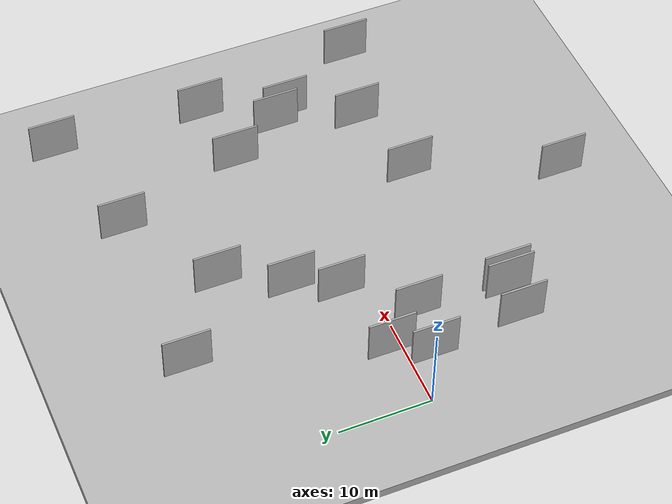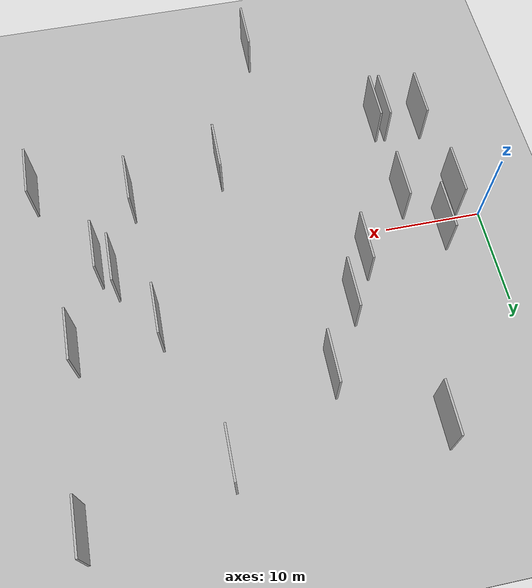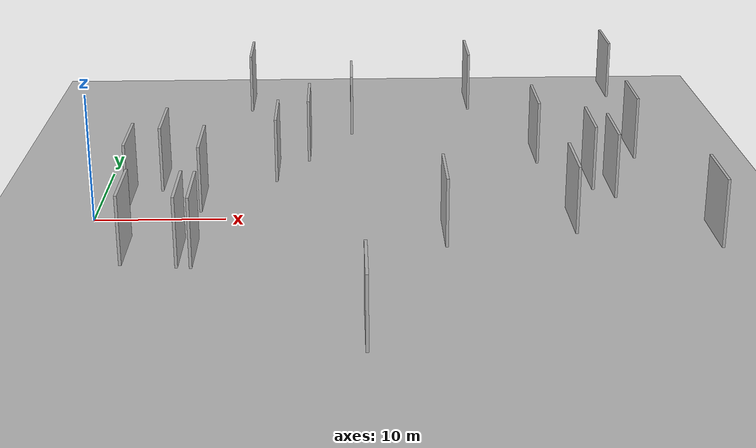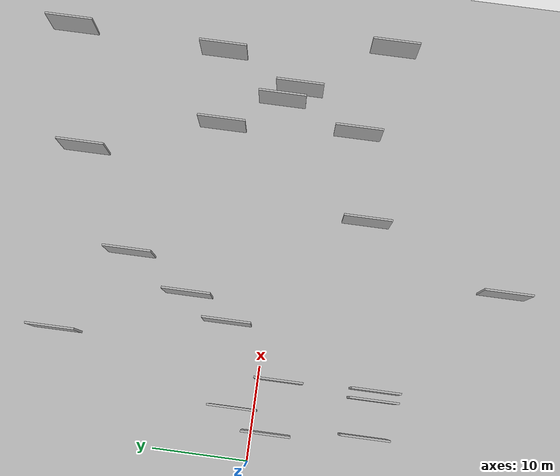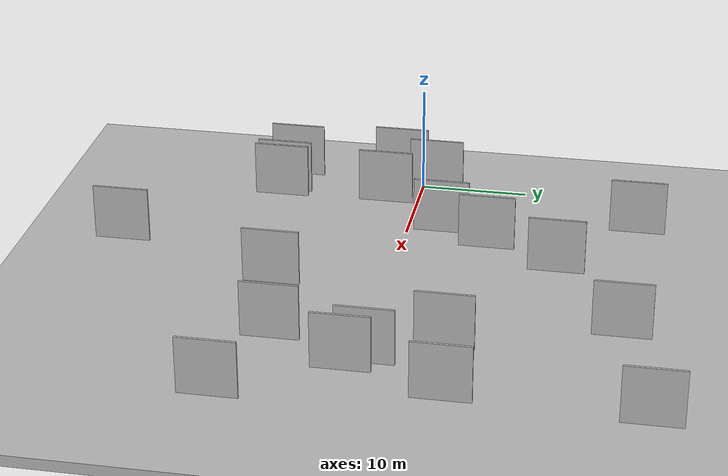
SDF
<?xml version="1.0" encoding="utf-8"?>

<sdf version="1.6">

   <world name="default">

      <gui fullscreen="0">

         <camera name="user_camera">

            <pose>-15 0 4.57585 0 0 0</pose>

            <view_controller>orbit</view_controller>

         </camera>

      </gui>

      <scene>

         <sky>

           <clouds>

             <speed>12</speed>

           </clouds>

         </sky>

         <ambient>0.4 0.4 0.4 1</ambient>

         <background>0.7 0.7 0.7 1</background>

         <shadows>1</shadows>

      </scene>

      <gravity>0 0 -9.8066</gravity>

      <magnetic_field>6e-06 2.3e-05 -4.2e-05</magnetic_field>

      <physics default="0" name="default_physics" type="ode">

         <ode>

            <solver>

               <type>quick</type>

               <iters>10</iters>

               <sor>1.0</sor>

               <use_dynamic_moi_rescaling>0</use_dynamic_moi_rescaling>

            </solver>

            <constraints>

               <cfm>0</cfm>

               <erp>0.2</erp>

               <contact_max_correcting_vel>100</contact_max_correcting_vel>

               <contact_surface_layer>0.001</contact_surface_layer>

            </constraints>

         </ode>

         <max_step_size>0.004</max_step_size>

         <real_time_factor>1</real_time_factor>

         <real_time_update_rate>250</real_time_update_rate>

      </physics>

      <light name="sun" type="directional">

         <cast_shadows>1</cast_shadows>

         <pose>0 0 10 0 0 0</pose>

         <diffuse>0.8 0.8 0.8 1</diffuse>

         <specular>0.2 0.2 0.2 1</specular>

         <attenuation>

            <range>1000</range>

            <constant>0.9</constant>

            <linear>0.01</linear>

            <quadratic>0.001</quadratic>

         </attenuation>

         <direction>-0.5 0.1 -0.9</direction>

      </light>

      <include>

         <name>ground_plane_1</name>

         <uri>model://HANNAS_ground_plane</uri>

         <pose>0 0 0  0 0 0</pose>

      </include>

      <include>

         <name>ground_plane_2</name>

         <uri>model://HANNAS_ground_plane</uri>

         <pose>100 0 0  0 0 0</pose>

      </include>

      <model name="HANNAS_wall_1">

         <static>1</static>

         <pose frame="">3.2488 -1.5777 2.5 0.000000 0.000000 1.570796</pose>

         <link name="link">

            <pose frame="">0 0 2.50 0 0 0</pose>

            <collision name="collision">

               <geometry>

                  <box>

                     <size>5.00 0.2 5.00</size>

                  </box>

               </geometry>

               <max_contacts>10</max_contacts>

               <surface>

                  <contact>

                     <ode/>

                  </contact>

                  <bounce/>

                  <friction>

                     <torsional>

                        <ode/>

                     </torsional>

                     <ode/>

                  </friction>

               </surface>

            </collision>

            <visual name="visual">

               <cast_shadows>0</cast_shadows>

               <geometry>

                  <box>

                     <size>5.00 0.2 5.00</size>

                  </box>

               </geometry>

               <material>

                  <script>

                     <uri>model://HANNAS_wall/materials/scripts</uri>

                     <uri>model://HANNAS_wall/materials/textures</uri>

                     <name>vrc/HANNAS_wall</name>

                  </script>

               </material>

            </visual>

            <self_collide>0</self_collide>

            <enable_wind>0</enable_wind>

            <kinematic>0</kinematic>

         </link>

      </model>

      <model name="HANNAS_wall_2">

         <static>1</static>

         <pose frame="">8.9226 -12.0013 2.5 0.000000 0.000000 1.570796</pose>

         <link name="link">

            <pose frame="">0 0 2.50 0 0 0</pose>

            <collision name="collision">

               <geometry>

                  <box>

                     <size>5.00 0.2 5.00</size>

                  </box>

               </geometry>

               <max_contacts>10</max_contacts>

               <surface>

                  <contact>

                     <ode/>

                  </contact>

                  <bounce/>

                  <friction>

                     <torsional>

                        <ode/>

                     </torsional>

                     <ode/>

                  </friction>

               </surface>

            </collision>

            <visual name="visual">

               <cast_shadows>0</cast_shadows>

               <geometry>

                  <box>

                     <size>5.00 0.2 5.00</size>

                  </box>

               </geometry>

               <material>

                  <script>

                     <uri>model://HANNAS_wall/materials/scripts</uri>

                     <uri>model://HANNAS_wall/materials/textures</uri>

                     <name>vrc/HANNAS_wall</name>

                  </script>

               </material>

            </visual>

            <self_collide>0</self_collide>

            <enable_wind>0</enable_wind>

            <kinematic>0</kinematic>

         </link>

      </model>

      <model name="HANNAS_wall_3">

         <static>1</static>

         <pose frame="">26.1405 -9.0996 2.5 0.000000 0.000000 1.570796</pose>

         <link name="link">

            <pose frame="">0 0 2.50 0 0 0</pose>

            <collision name="collision">

               <geometry>

                  <box>

                     <size>5.00 0.2 5.00</size>

                  </box>

               </geometry>

               <max_contacts>10</max_contacts>

               <surface>

                  <contact>

                     <ode/>

                  </contact>

                  <bounce/>

                  <friction>

                     <torsional>

                        <ode/>

                     </torsional>

                     <ode/>

                  </friction>

               </surface>

            </collision>

            <visual name="visual">

               <cast_shadows>0</cast_shadows>

               <geometry>

                  <box>

                     <size>5.00 0.2 5.00</size>

                  </box>

               </geometry>

               <material>

                  <script>

                     <uri>model://HANNAS_wall/materials/scripts</uri>

                     <uri>model://HANNAS_wall/materials/textures</uri>

                     <name>vrc/HANNAS_wall</name>

                  </script>

               </material>

            </visual>

            <self_collide>0</self_collide>

            <enable_wind>0</enable_wind>

            <kinematic>0</kinematic>

         </link>

      </model>

      <model name="HANNAS_wall_4">

         <static>1</static>

         <pose frame="">37.9892 1.3046 2.5 0.000000 0.000000 1.570796</pose>

         <link name="link">

            <pose frame="">0 0 2.50 0 0 0</pose>

            <collision name="collision">

               <geometry>

                  <box>

                     <size>5.00 0.2 5.00</size>

                  </box>

               </geometry>

               <max_contacts>10</max_contacts>

               <surface>

                  <contact>

                     <ode/>

                  </contact>

                  <bounce/>

                  <friction>

                     <torsional>

                        <ode/>

                     </torsional>

                     <ode/>

                  </friction>

               </surface>

            </collision>

            <visual name="visual">

               <cast_shadows>0</cast_shadows>

               <geometry>

                  <box>

                     <size>5.00 0.2 5.00</size>

                  </box>

               </geometry>

               <material>

                  <script>

                     <uri>model://HANNAS_wall/materials/scripts</uri>

                     <uri>model://HANNAS_wall/materials/textures</uri>

                     <name>vrc/HANNAS_wall</name>

                  </script>

               </material>

            </visual>

            <self_collide>0</self_collide>

            <enable_wind>0</enable_wind>

            <kinematic>0</kinematic>

         </link>

      </model>

      <model name="HANNAS_wall_5">

         <static>1</static>

         <pose frame="">11.0027 21.3055 2.5 0.000000 0.000000 1.570796</pose>

         <link name="link">

            <pose frame="">0 0 2.50 0 0 0</pose>

            <collision name="collision">

               <geometry>

                  <box>

                     <size>5.00 0.2 5.00</size>

                  </box>

               </geometry>

               <max_contacts>10</max_contacts>

               <surface>

                  <contact>

                     <ode/>

                  </contact>

                  <bounce/>

                  <friction>

                     <torsional>

                        <ode/>

                     </torsional>

                     <ode/>

                  </friction>

               </surface>

            </collision>

            <visual name="visual">

               <cast_shadows>0</cast_shadows>

               <geometry>

                  <box>

                     <size>5.00 0.2 5.00</size>

                  </box>

               </geometry>

               <material>

                  <script>

                     <uri>model://HANNAS_wall/materials/scripts</uri>

                     <uri>model://HANNAS_wall/materials/textures</uri>

                     <name>vrc/HANNAS_wall</name>

                  </script>

               </material>

            </visual>

            <self_collide>0</self_collide>

            <enable_wind>0</enable_wind>

            <kinematic>0</kinematic>

         </link>

      </model>

      <model name="HANNAS_wall_6">

         <static>1</static>

         <pose frame="">5.3914 2.0999 2.5 0.000000 0.000000 1.570796</pose>

         <link name="link">

            <pose frame="">0 0 2.50 0 0 0</pose>

            <collision name="collision">

               <geometry>

                  <box>

                     <size>5.00 0.2 5.00</size>

                  </box>

               </geometry>

               <max_contacts>10</max_contacts>

               <surface>

                  <contact>

                     <ode/>

                  </contact>

                  <bounce/>

                  <friction>

                     <torsional>

                        <ode/>

                     </torsional>

                     <ode/>

                  </friction>

               </surface>

            </collision>

            <visual name="visual">

               <cast_shadows>0</cast_shadows>

               <geometry>

                  <box>

                     <size>5.00 0.2 5.00</size>

                  </box>

               </geometry>

               <material>

                  <script>

                     <uri>model://HANNAS_wall/materials/scripts</uri>

                     <uri>model://HANNAS_wall/materials/textures</uri>

                     <name>vrc/HANNAS_wall</name>

                  </script>

               </material>

            </visual>

            <self_collide>0</self_collide>

            <enable_wind>0</enable_wind>

            <kinematic>0</kinematic>

         </link>

      </model>

      <model name="HANNAS_wall_7">

         <static>1</static>

         <pose frame="">30.1530 21.3066 2.5 0.000000 0.000000 1.570796</pose>

         <link name="link">

            <pose frame="">0 0 2.50 0 0 0</pose>

            <collision name="collision">

               <geometry>

                  <box>

                     <size>5.00 0.2 5.00</size>

                  </box>

               </geometry>

               <max_contacts>10</max_contacts>

               <surface>

                  <contact>

                     <ode/>

                  </contact>

                  <bounce/>

                  <friction>

                     <torsional>

                        <ode/>

                     </torsional>

                     <ode/>

                  </friction>

               </surface>

            </collision>

            <visual name="visual">

               <cast_shadows>0</cast_shadows>

               <geometry>

                  <box>

                     <size>5.00 0.2 5.00</size>

                  </box>

               </geometry>

               <material>

                  <script>

                     <uri>model://HANNAS_wall/materials/scripts</uri>

                     <uri>model://HANNAS_wall/materials/textures</uri>

                     <name>vrc/HANNAS_wall</name>

                  </script>

               </material>

            </visual>

            <self_collide>0</self_collide>

            <enable_wind>0</enable_wind>

            <kinematic>0</kinematic>

         </link>

      </model>

      <model name="HANNAS_wall_8">

         <static>1</static>

         <pose frame="">35.4290 -7.0566 2.5 0.000000 0.000000 1.570796</pose>

         <link name="link">

            <pose frame="">0 0 2.50 0 0 0</pose>

            <collision name="collision">

               <geometry>

                  <box>

                     <size>5.00 0.2 5.00</size>

                  </box>

               </geometry>

               <max_contacts>10</max_contacts>

               <surface>

                  <contact>

                     <ode/>

                  </contact>

                  <bounce/>

                  <friction>

                     <torsional>

                        <ode/>

                     </torsional>

                     <ode/>

                  </friction>

               </surface>

            </collision>

            <visual name="visual">

               <cast_shadows>0</cast_shadows>

               <geometry>

                  <box>

                     <size>5.00 0.2 5.00</size>

                  </box>

               </geometry>

               <material>

                  <script>

                     <uri>model://HANNAS_wall/materials/scripts</uri>

                     <uri>model://HANNAS_wall/materials/textures</uri>

                     <name>vrc/HANNAS_wall</name>

                  </script>

               </material>

            </visual>

            <self_collide>0</self_collide>

            <enable_wind>0</enable_wind>

            <kinematic>0</kinematic>

         </link>

      </model>

      <model name="HANNAS_wall_9">

         <static>1</static>

         <pose frame="">39.4159 -0.3610 2.5 0.000000 0.000000 1.570796</pose>

         <link name="link">

            <pose frame="">0 0 2.50 0 0 0</pose>

            <collision name="collision">

               <geometry>

                  <box>

                     <size>5.00 0.2 5.00</size>

                  </box>

               </geometry>

               <max_contacts>10</max_contacts>

               <surface>

                  <contact>

                     <ode/>

                  </contact>

                  <bounce/>

                  <friction>

                     <torsional>

                        <ode/>

                     </torsional>

                     <ode/>

                  </friction>

               </surface>

            </collision>

            <visual name="visual">

               <cast_shadows>0</cast_shadows>

               <geometry>

                  <box>

                     <size>5.00 0.2 5.00</size>

                  </box>

               </geometry>

               <material>

                  <script>

                     <uri>model://HANNAS_wall/materials/scripts</uri>

                     <uri>model://HANNAS_wall/materials/textures</uri>

                     <name>vrc/HANNAS_wall</name>

                  </script>

               </material>

            </visual>

            <self_collide>0</self_collide>

            <enable_wind>0</enable_wind>

            <kinematic>0</kinematic>

         </link>

      </model>

      <model name="HANNAS_wall_10">

         <static>1</static>

         <pose frame="">8.6713 -2.1832 2.5 0.000000 0.000000 1.570796</pose>

         <link name="link">

            <pose frame="">0 0 2.50 0 0 0</pose>

            <collision name="collision">

               <geometry>

                  <box>

                     <size>5.00 0.2 5.00</size>

                  </box>

               </geometry>

               <max_contacts>10</max_contacts>

               <surface>

                  <contact>

                     <ode/>

                  </contact>

                  <bounce/>

                  <friction>

                     <torsional>

                        <ode/>

                     </torsional>

                     <ode/>

                  </friction>

               </surface>

            </collision>

            <visual name="visual">

               <cast_shadows>0</cast_shadows>

               <geometry>

                  <box>

                     <size>5.00 0.2 5.00</size>

                  </box>

               </geometry>

               <material>

                  <script>

                     <uri>model://HANNAS_wall/materials/scripts</uri>

                     <uri>model://HANNAS_wall/materials/textures</uri>

                     <name>vrc/HANNAS_wall</name>

                  </script>

               </material>

            </visual>

            <self_collide>0</self_collide>

            <enable_wind>0</enable_wind>

            <kinematic>0</kinematic>

         </link>

      </model>

      <model name="HANNAS_wall_11">

         <static>1</static>

         <pose frame="">7.9594 -11.8904 2.5 0.000000 0.000000 1.570796</pose>

         <link name="link">

            <pose frame="">0 0 2.50 0 0 0</pose>

            <collision name="collision">

               <geometry>

                  <box>

                     <size>5.00 0.2 5.00</size>

                  </box>

               </geometry>

               <max_contacts>10</max_contacts>

               <surface>

                  <contact>

                     <ode/>

                  </contact>

                  <bounce/>

                  <friction>

                     <torsional>

                        <ode/>

                     </torsional>

                     <ode/>

                  </friction>

               </surface>

            </collision>

            <visual name="visual">

               <cast_shadows>0</cast_shadows>

               <geometry>

                  <box>

                     <size>5.00 0.2 5.00</size>

                  </box>

               </geometry>

               <material>

                  <script>

                     <uri>model://HANNAS_wall/materials/scripts</uri>

                     <uri>model://HANNAS_wall/materials/textures</uri>

                     <name>vrc/HANNAS_wall</name>

                  </script>

               </material>

            </visual>

            <self_collide>0</self_collide>

            <enable_wind>0</enable_wind>

            <kinematic>0</kinematic>

         </link>

      </model>

      <model name="HANNAS_wall_12">

         <static>1</static>

         <pose frame="">20.4215 -24.0753 2.5 0.000000 0.000000 1.570796</pose>

         <link name="link">

            <pose frame="">0 0 2.50 0 0 0</pose>

            <collision name="collision">

               <geometry>

                  <box>

                     <size>5.00 0.2 5.00</size>

                  </box>

               </geometry>

               <max_contacts>10</max_contacts>

               <surface>

                  <contact>

                     <ode/>

                  </contact>

                  <bounce/>

                  <friction>

                     <torsional>

                        <ode/>

                     </torsional>

                     <ode/>

                  </friction>

               </surface>

            </collision>

            <visual name="visual">

               <cast_shadows>0</cast_shadows>

               <geometry>

                  <box>

                     <size>5.00 0.2 5.00</size>

                  </box>

               </geometry>

               <material>

                  <script>

                     <uri>model://HANNAS_wall/materials/scripts</uri>

                     <uri>model://HANNAS_wall/materials/textures</uri>

                     <name>vrc/HANNAS_wall</name>

                  </script>

               </material>

            </visual>

            <self_collide>0</self_collide>

            <enable_wind>0</enable_wind>

            <kinematic>0</kinematic>

         </link>

      </model>

      <model name="HANNAS_wall_13">

         <static>1</static>

         <pose frame="">19.8010 14.8368 2.5 0.000000 0.000000 1.570796</pose>

         <link name="link">

            <pose frame="">0 0 2.50 0 0 0</pose>

            <collision name="collision">

               <geometry>

                  <box>

                     <size>5.00 0.2 5.00</size>

                  </box>

               </geometry>

               <max_contacts>10</max_contacts>

               <surface>

                  <contact>

                     <ode/>

                  </contact>

                  <bounce/>

                  <friction>

                     <torsional>

                        <ode/>

                     </torsional>

                     <ode/>

                  </friction>

               </surface>

            </collision>

            <visual name="visual">

               <cast_shadows>0</cast_shadows>

               <geometry>

                  <box>

                     <size>5.00 0.2 5.00</size>

                  </box>

               </geometry>

               <material>

                  <script>

                     <uri>model://HANNAS_wall/materials/scripts</uri>

                     <uri>model://HANNAS_wall/materials/textures</uri>

                     <name>vrc/HANNAS_wall</name>

                  </script>

               </material>

            </visual>

            <self_collide>0</self_collide>

            <enable_wind>0</enable_wind>

            <kinematic>0</kinematic>

         </link>

      </model>

      <model name="HANNAS_wall_14">

         <static>1</static>

         <pose frame="">43.1980 24.5683 2.5 0.000000 0.000000 1.570796</pose>

         <link name="link">

            <pose frame="">0 0 2.50 0 0 0</pose>

            <collision name="collision">

               <geometry>

                  <box>

                     <size>5.00 0.2 5.00</size>

                  </box>

               </geometry>

               <max_contacts>10</max_contacts>

               <surface>

                  <contact>

                     <ode/>

                  </contact>

                  <bounce/>

                  <friction>

                     <torsional>

                        <ode/>

                     </torsional>

                     <ode/>

                  </friction>

               </surface>

            </collision>

            <visual name="visual">

               <cast_shadows>0</cast_shadows>

               <geometry>

                  <box>

                     <size>5.00 0.2 5.00</size>

                  </box>

               </geometry>

               <material>

                  <script>

                     <uri>model://HANNAS_wall/materials/scripts</uri>

                     <uri>model://HANNAS_wall/materials/textures</uri>

                     <name>vrc/HANNAS_wall</name>

                  </script>

               </material>

            </visual>

            <self_collide>0</self_collide>

            <enable_wind>0</enable_wind>

            <kinematic>0</kinematic>

         </link>

      </model>

      <model name="HANNAS_wall_15">

         <static>1</static>

         <pose frame="">16.3346 8.2708 2.5 0.000000 0.000000 1.570796</pose>

         <link name="link">

            <pose frame="">0 0 2.50 0 0 0</pose>

            <collision name="collision">

               <geometry>

                  <box>

                     <size>5.00 0.2 5.00</size>

                  </box>

               </geometry>

               <max_contacts>10</max_contacts>

               <surface>

                  <contact>

                     <ode/>

                  </contact>

                  <bounce/>

                  <friction>

                     <torsional>

                        <ode/>

                     </torsional>

                     <ode/>

                  </friction>

               </surface>

            </collision>

            <visual name="visual">

               <cast_shadows>0</cast_shadows>

               <geometry>

                  <box>

                     <size>5.00 0.2 5.00</size>

                  </box>

               </geometry>

               <material>

                  <script>

                     <uri>model://HANNAS_wall/materials/scripts</uri>

                     <uri>model://HANNAS_wall/materials/textures</uri>

                     <name>vrc/HANNAS_wall</name>

                  </script>

               </material>

            </visual>

            <self_collide>0</self_collide>

            <enable_wind>0</enable_wind>

            <kinematic>0</kinematic>

         </link>

      </model>

      <model name="HANNAS_wall_16">

         <static>1</static>

         <pose frame="">42.5244 8.1802 2.5 0.000000 0.000000 1.570796</pose>

         <link name="link">

            <pose frame="">0 0 2.50 0 0 0</pose>

            <collision name="collision">

               <geometry>

                  <box>

                     <size>5.00 0.2 5.00</size>

                  </box>

               </geometry>

               <max_contacts>10</max_contacts>

               <surface>

                  <contact>

                     <ode/>

                  </contact>

                  <bounce/>

                  <friction>

                     <torsional>

                        <ode/>

                     </torsional>

                     <ode/>

                  </friction>

               </surface>

            </collision>

            <visual name="visual">

               <cast_shadows>0</cast_shadows>

               <geometry>

                  <box>

                     <size>5.00 0.2 5.00</size>

                  </box>

               </geometry>

               <material>

                  <script>

                     <uri>model://HANNAS_wall/materials/scripts</uri>

                     <uri>model://HANNAS_wall/materials/textures</uri>

                     <name>vrc/HANNAS_wall</name>

                  </script>

               </material>

            </visual>

            <self_collide>0</self_collide>

            <enable_wind>0</enable_wind>

            <kinematic>0</kinematic>

         </link>

      </model>

      <model name="HANNAS_wall_17">

         <static>1</static>

         <pose frame="">45.0699 -9.8047 2.5 0.000000 0.000000 1.570796</pose>

         <link name="link">

            <pose frame="">0 0 2.50 0 0 0</pose>

            <collision name="collision">

               <geometry>

                  <box>

                     <size>5.00 0.2 5.00</size>

                  </box>

               </geometry>

               <max_contacts>10</max_contacts>

               <surface>

                  <contact>

                     <ode/>

                  </contact>

                  <bounce/>

                  <friction>

                     <torsional>

                        <ode/>

                     </torsional>

                     <ode/>

                  </friction>

               </surface>

            </collision>

            <visual name="visual">

               <cast_shadows>0</cast_shadows>

               <geometry>

                  <box>

                     <size>5.00 0.2 5.00</size>

                  </box>

               </geometry>

               <material>

                  <script>

                     <uri>model://HANNAS_wall/materials/scripts</uri>

                     <uri>model://HANNAS_wall/materials/textures</uri>

                     <name>vrc/HANNAS_wall</name>

                  </script>

               </material>

            </visual>

            <self_collide>0</self_collide>

            <enable_wind>0</enable_wind>

            <kinematic>0</kinematic>

         </link>

      </model>

      <model name="HANNAS_wall_18">

         <static>1</static>

         <pose frame="">13.9396 3.8428 2.5 0.000000 0.000000 1.570796</pose>

         <link name="link">

            <pose frame="">0 0 2.50 0 0 0</pose>

            <collision name="collision">

               <geometry>

                  <box>

                     <size>5.00 0.2 5.00</size>

                  </box>

               </geometry>

               <max_contacts>10</max_contacts>

               <surface>

                  <contact>

                     <ode/>

                  </contact>

                  <bounce/>

                  <friction>

                     <torsional>

                        <ode/>

                     </torsional>

                     <ode/>

                  </friction>

               </surface>

            </collision>

            <visual name="visual">

               <cast_shadows>0</cast_shadows>

               <geometry>

                  <box>

                     <size>5.00 0.2 5.00</size>

                  </box>

               </geometry>

               <material>

                  <script>

                     <uri>model://HANNAS_wall/materials/scripts</uri>

                     <uri>model://HANNAS_wall/materials/textures</uri>

                     <name>vrc/HANNAS_wall</name>

                  </script>

               </material>

            </visual>

            <self_collide>0</self_collide>

            <enable_wind>0</enable_wind>

            <kinematic>0</kinematic>

         </link>

      </model>

      <model name="HANNAS_wall_19">

         <static>1</static>

         <pose frame="">34.5166 7.2417 2.5 0.000000 0.000000 1.570796</pose>

         <link name="link">

            <pose frame="">0 0 2.50 0 0 0</pose>

            <collision name="collision">

               <geometry>

                  <box>

                     <size>5.00 0.2 5.00</size>

                  </box>

               </geometry>

               <max_contacts>10</max_contacts>

               <surface>

                  <contact>

                     <ode/>

                  </contact>

                  <bounce/>

                  <friction>

                     <torsional>

                        <ode/>

                     </torsional>

                     <ode/>

                  </friction>

               </surface>

            </collision>

            <visual name="visual">

               <cast_shadows>0</cast_shadows>

               <geometry>

                  <box>

                     <size>5.00 0.2 5.00</size>

                  </box>

               </geometry>

               <material>

                  <script>

                     <uri>model://HANNAS_wall/materials/scripts</uri>

                     <uri>model://HANNAS_wall/materials/textures</uri>

                     <name>vrc/HANNAS_wall</name>

                  </script>

               </material>

            </visual>

            <self_collide>0</self_collide>

            <enable_wind>0</enable_wind>

            <kinematic>0</kinematic>

         </link>

      </model>

      <model name="HANNAS_wall_20">

         <static>1</static>

         <pose frame="">4.1829 -11.4360 2.5 0.000000 0.000000 1.570796</pose>

         <link name="link">

            <pose frame="">0 0 2.50 0 0 0</pose>

            <collision name="collision">

               <geometry>

                  <box>

                     <size>5.00 0.2 5.00</size>

                  </box>

               </geometry>

               <max_contacts>10</max_contacts>

               <surface>

                  <contact>

                     <ode/>

                  </contact>

                  <bounce/>

                  <friction>

                     <torsional>

                        <ode/>

                     </torsional>

                     <ode/>

                  </friction>

               </surface>

            </collision>

            <visual name="visual">

               <cast_shadows>0</cast_shadows>

               <geometry>

                  <box>

                     <size>5.00 0.2 5.00</size>

                  </box>

               </geometry>

               <material>

                  <script>

                     <uri>model://HANNAS_wall/materials/scripts</uri>

                     <uri>model://HANNAS_wall/materials/textures</uri>

                     <name>vrc/HANNAS_wall</name>

                  </script>

               </material>

            </visual>

            <self_collide>0</self_collide>

            <enable_wind>0</enable_wind>

            <kinematic>0</kinematic>

         </link>

      </model>

   </world>

</sdf>

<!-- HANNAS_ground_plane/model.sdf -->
<sdf version="1.4">
<model name="HANNAS_ground_plane">
  <static>true</static>
    <link name="link">
      <collision name="collision">
        <geometry>
          <plane>
            <normal>0 0 1</normal>
            <size>1000 1000</size>
          </plane>
        </geometry>
        <surface>
          <friction>
            <ode>
              <mu>100</mu>
              <mu2>50</mu2>
            </ode>
          </friction>
        </surface>
      </collision>
      <visual name="visual">
        <cast_shadows>false</cast_shadows>
        <geometry>
          <plane>
            <normal>0 0 1</normal>
            <size>1000 1000</size>
          </plane>
        </geometry>
        <material>
          <script>
            <uri>model://HANNAS_ground_plane/materials/scripts/HANNAS_ground_plane.material</uri>
	    <uri>model://HANNAS_ground_plane/materials/textures</uri>
            <name>HANNASGroundPlane/Image</name>
          </script>
        </material>
      </visual>
    </link>
  </model>
</sdf>
